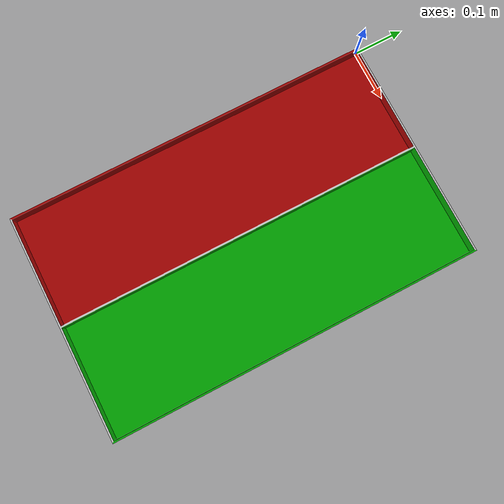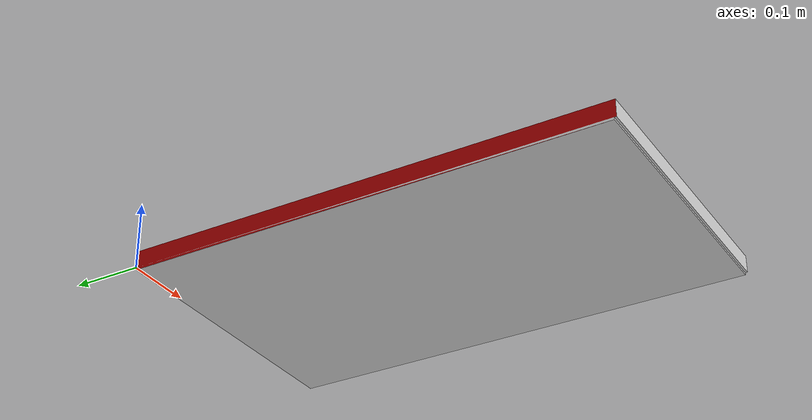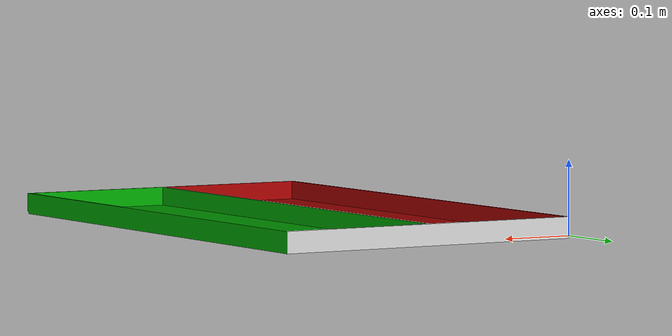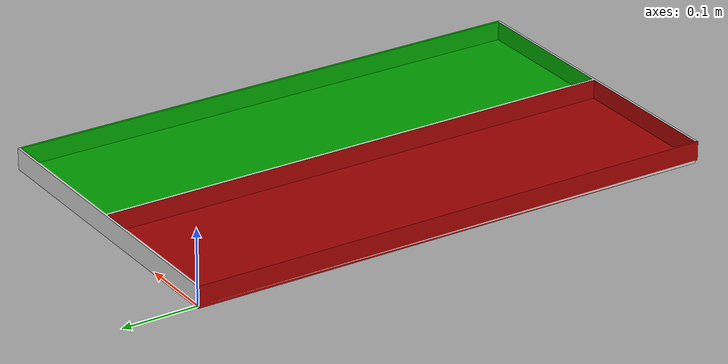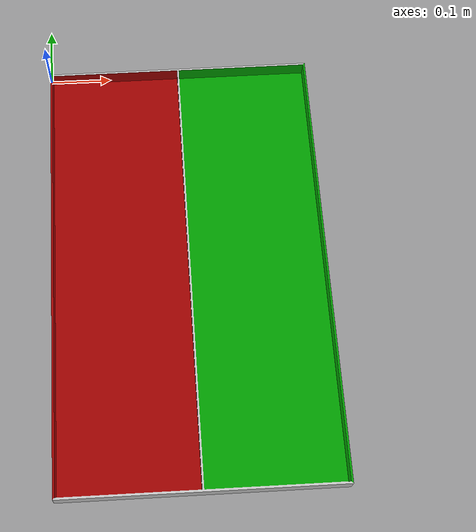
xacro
<robot
  name="Roulette_robot">
  <link
    name="Roulette_link">
    <inertial>
      <origin
        xyz="0.2159 -0.35433 0.00124640000000002"
        rpy="0 0 0" />
      <mass
        value="1.2109" />
      <inertia
        ixx="0.0563918765823245"
        ixy="-3.19365302432761E-17"
        ixz="1.62630325872824E-19"
        iyy="0.0214388388460461"
        iyz="4.36695243940475E-06"
        izz="0.0777246544530727" />
    </inertial>
    <visual>
      <origin
        xyz="0 0 0"
        rpy="1.5707963267949 0 0" />
      <geometry>
        <mesh
          filename="package://robosub_descriptions/meshes/Roulette.dae" />
      </geometry>
    </visual>
    <collision>
      <origin
        xyz="0 0 0"
        rpy="1.5707963267949 0 0" />
      <geometry>
        <mesh
          filename="package://robosub_descriptions/meshes/Roulette.stl" />
      </geometry>
    </collision>
  </link>
  <gazebo reference="Roulette_link">
      <turnGravityOff>false</turnGravityOff>
  </gazebo>
</robot>
